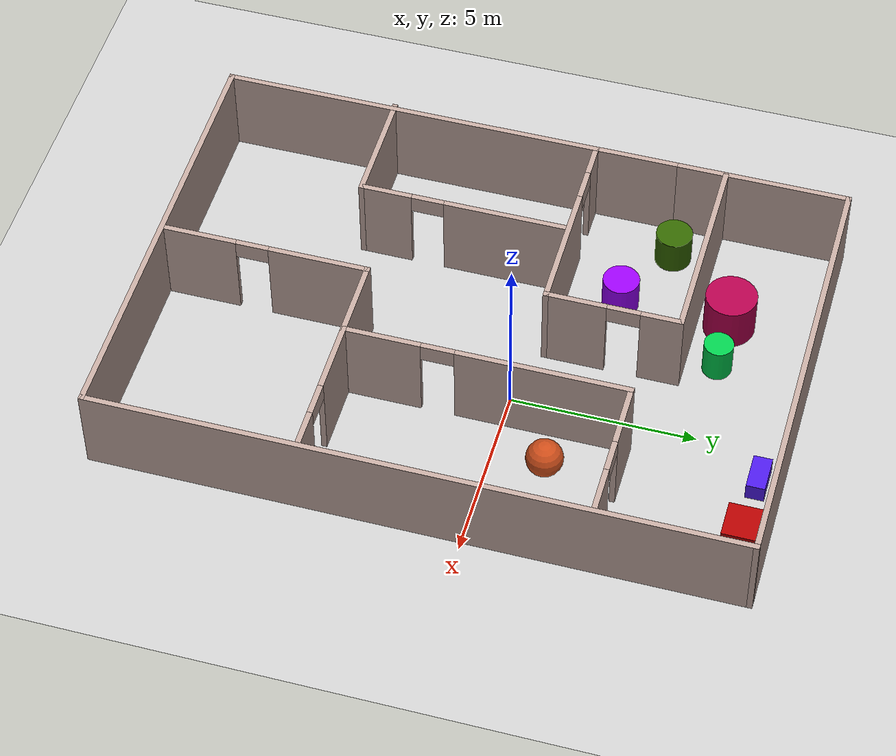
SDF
<sdf version="1.7">
 <world name="default">
  <model name="ground_plane">
   <static>1</static>
   <link name="link">
    <collision name="collision">
     <geometry><plane><normal>0 0 1</normal><size>100 100</size></plane></geometry>
     <surface><friction><ode><mu>100</mu><mu2>50</mu2></ode></friction></surface>
    </collision>
    <visual name="visual">
     <cast_shadows>0</cast_shadows>
     <geometry><plane><normal>0 0 1</normal><size>100 100</size></plane></geometry>
     <material>
      <script><uri>file://media/materials/scripts/gazebo.material</uri><name>Gazebo/Grey</name></script>
     </material>
    </visual>
   </link>
  </model>
  <model name="map3_level3">
   <pose>-1.22338 -1.24775 0 0 -0 0</pose>
   <link name="Wall_11">
    <collision name="Wall_11_Collision">
     <geometry><box><size>5.5 0.15 2.5</size></box></geometry>
     <pose>0 0 1.25 0 -0 0</pose>
    </collision>
    <visual name="Wall_11_Visual">
     <pose>0 0 1.25 0 -0 0</pose>
     <geometry><box><size>5.5 0.15 2.5</size></box></geometry>
     <material>
      <script><uri>file://media/materials/scripts/gazebo.material</uri><name>Gazebo/Grey</name></script>
      <ambient>0.760784 0.662745 0.627451 1</ambient>
     </material>
     <meta><layer>0</layer></meta>
    </visual>
    <pose>-3.16034 5.33374 0 0 -0 0</pose>
   </link>
   <link name="Wall_12">
    <pose>-0.485339 3.53374 0 0 -0 -1.5708</pose>
    <visual name="Wall_12_Visual_0">
     <pose>-1.30105 0 1.25 0 -0 0</pose>
     <geometry><box><size>1.14789 0.15 2.5</size></box></geometry>
     <material>
      <script><uri>file://media/materials/scripts/gazebo.material</uri><name>Gazebo/Grey</name></script>
      <ambient>0.760784 0.662745 0.627451 1</ambient>
     </material>
     <meta><layer>0</layer></meta>
    </visual>
    <collision name="Wall_12_Collision_0">
     <geometry><box><size>1.14789 0.15 2.5</size></box></geometry>
     <pose>-1.30105 0 1.25 0 -0 0</pose>
    </collision>
    <visual name="Wall_12_Visual_1">
     <pose>1.02395 0 1.25 0 -0 0</pose>
     <geometry><box><size>1.70211 0.15 2.5</size></box></geometry>
     <material>
      <script><uri>file://media/materials/scripts/gazebo.material</uri><name>Gazebo/Grey</name></script>
      <ambient>0.760784 0.662745 0.627451 1</ambient>
     </material>
     <meta><layer>0</layer></meta>
    </visual>
    <collision name="Wall_12_Collision_1">
     <geometry><box><size>1.70211 0.15 2.5</size></box></geometry>
     <pose>1.02395 0 1.25 0 -0 0</pose>
    </collision>
    <visual name="Wall_12_Visual_2">
     <pose>-0.277106 0 2.25 0 -0 0</pose>
     <geometry><box><size>0.9 0.15 0.5</size></box></geometry>
     <material>
      <script><uri>file://media/materials/scripts/gazebo.material</uri><name>Gazebo/Grey</name></script>
      <ambient>0.760784 0.662745 0.627451 1</ambient>
     </material>
     <meta><layer>0</layer></meta>
    </visual>
    <collision name="Wall_12_Collision_2">
     <geometry><box><size>0.9 0.15 0.5</size></box></geometry>
     <pose>-0.277106 0 2.25 0 -0 0</pose>
    </collision>
   </link>
   <link name="Wall_13">
    <pose>-3.16034 1.73374 0 0 -0 3.14159</pose>
    <visual name="Wall_13_Visual_0">
     <pose>-0.926346 0 1.25 0 -0 0</pose>
     <geometry><box><size>3.64731 0.15 2.5</size></box></geometry>
     <material>
      <script><uri>file://media/materials/scripts/gazebo.material</uri><name>Gazebo/Grey</name></script>
      <ambient>0.760784 0.662745 0.627451 1</ambient>
     </material>
     <meta><layer>0</layer></meta>
    </visual>
    <collision name="Wall_13_Collision_0">
     <geometry><box><size>3.64731 0.15 2.5</size></box></geometry>
     <pose>-0.926346 0 1.25 0 -0 0</pose>
    </collision>
    <visual name="Wall_13_Visual_1">
     <pose>2.27365 0 1.25 0 -0 0</pose>
     <geometry><box><size>0.952692 0.15 2.5</size></box></geometry>
     <material>
      <script><uri>file://media/materials/scripts/gazebo.material</uri><name>Gazebo/Grey</name></script>
      <ambient>0.760784 0.662745 0.627451 1</ambient>
     </material>
     <meta><layer>0</layer></meta>
    </visual>
    <collision name="Wall_13_Collision_1">
     <geometry><box><size>0.952692 0.15 2.5</size></box></geometry>
     <pose>2.27365 0 1.25 0 -0 0</pose>
    </collision>
    <visual name="Wall_13_Visual_2">
     <pose>1.34731 0 2.25 0 -0 0</pose>
     <geometry><box><size>0.9 0.15 0.5</size></box></geometry>
     <material>
      <script><uri>file://media/materials/scripts/gazebo.material</uri><name>Gazebo/Grey</name></script>
      <ambient>0.760784 0.662745 0.627451 1</ambient>
     </material>
     <meta><layer>0</layer></meta>
    </visual>
    <collision name="Wall_13_Collision_2">
     <geometry><box><size>0.9 0.15 0.5</size></box></geometry>
     <pose>1.34731 0 2.25 0 -0 0</pose>
    </collision>
   </link>
   <link name="Wall_15">
    <pose>3.96735 4.61084 0 0 -0 3.14159</pose>
    <visual name="Wall_15_Visual_0">
     <pose>-1.3475 0 1.25 0 -0 0</pose>
     <geometry><box><size>1.305 0.15 2.5</size></box></geometry>
     <material>
      <script><uri>file://media/materials/scripts/gazebo.material</uri><name>Gazebo/Grey</name></script>
      <ambient>0.760784 0.662745 0.627451 1</ambient>
     </material>
     <meta><layer>0</layer></meta>
    </visual>
    <collision name="Wall_15_Collision_0">
     <geometry><box><size>1.305 0.15 2.5</size></box></geometry>
     <pose>-1.3475 0 1.25 0 -0 0</pose>
    </collision>
    <visual name="Wall_15_Visual_1">
     <pose>1.1025 0 1.25 0 -0 0</pose>
     <geometry><box><size>1.795 0.15 2.5</size></box></geometry>
     <material>
      <script><uri>file://media/materials/scripts/gazebo.material</uri><name>Gazebo/Grey</name></script>
      <ambient>0.760784 0.662745 0.627451 1</ambient>
     </material>
     <meta><layer>0</layer></meta>
    </visual>
    <collision name="Wall_15_Collision_1">
     <geometry><box><size>1.795 0.15 2.5</size></box></geometry>
     <pose>1.1025 0 1.25 0 -0 0</pose>
    </collision>
    <visual name="Wall_15_Visual_2">
     <pose>-0.245 0 2.25 0 -0 0</pose>
     <geometry><box><size>0.9 0.15 0.5</size></box></geometry>
     <material>
      <script><uri>file://media/materials/scripts/gazebo.material</uri><name>Gazebo/Grey</name></script>
      <ambient>0.760784 0.662745 0.627451 1</ambient>
     </material>
     <meta><layer>0</layer></meta>
    </visual>
    <collision name="Wall_15_Collision_2">
     <geometry><box><size>0.9 0.15 0.5</size></box></geometry>
     <pose>-0.245 0 2.25 0 -0 0</pose>
    </collision>
   </link>
   <link name="Wall_16">
    <pose>2.04235 0.810843 0 0 -0 -1.5708</pose>
    <visual name="Wall_16_Visual_0">
     <pose>-1.5225 0 1.25 0 -0 0</pose>
     <geometry><box><size>4.705 0.15 2.5</size></box></geometry>
     <material>
      <script><uri>file://media/materials/scripts/gazebo.material</uri><name>Gazebo/Grey</name></script>
      <ambient>0.760784 0.662745 0.627451 1</ambient>
     </material>
     <meta><layer>0</layer></meta>
    </visual>
    <collision name="Wall_16_Collision_0">
     <geometry><box><size>4.705 0.15 2.5</size></box></geometry>
     <pose>-1.5225 0 1.25 0 -0 0</pose>
    </collision>
    <visual name="Wall_16_Visual_1">
     <pose>2.8025 0 1.25 0 -0 0</pose>
     <geometry><box><size>2.145 0.15 2.5</size></box></geometry>
     <material>
      <script><uri>file://media/materials/scripts/gazebo.material</uri><name>Gazebo/Grey</name></script>
      <ambient>0.760784 0.662745 0.627451 1</ambient>
     </material>
     <meta><layer>0</layer></meta>
    </visual>
    <collision name="Wall_16_Collision_1">
     <geometry><box><size>2.145 0.15 2.5</size></box></geometry>
     <pose>2.8025 0 1.25 0 -0 0</pose>
    </collision>
    <visual name="Wall_16_Visual_2">
     <pose>1.28 0 2.25 0 -0 0</pose>
     <geometry><box><size>0.9 0.15 0.5</size></box></geometry>
     <material>
      <script><uri>file://media/materials/scripts/gazebo.material</uri><name>Gazebo/Grey</name></script>
      <ambient>0.760784 0.662745 0.627451 1</ambient>
     </material>
     <meta><layer>0</layer></meta>
    </visual>
    <collision name="Wall_16_Collision_2">
     <geometry><box><size>0.9 0.15 0.5</size></box></geometry>
     <pose>1.28 0 2.25 0 -0 0</pose>
    </collision>
   </link>
   <link name="Wall_17">
    <pose>3.96735 -2.98916 0 0 -0 0</pose>
    <visual name="Wall_17_Visual_0">
     <pose>-0.9825 0 1.25 0 -0 0</pose>
     <geometry><box><size>2.035 0.15 2.5</size></box></geometry>
     <material>
      <script><uri>file://media/materials/scripts/gazebo.material</uri><name>Gazebo/Grey</name></script>
      <ambient>0.760784 0.662745 0.627451 1</ambient>
     </material>
     <meta><layer>0</layer></meta>
    </visual>
    <collision name="Wall_17_Collision_0">
     <geometry><box><size>2.035 0.15 2.5</size></box></geometry>
     <pose>-0.9825 0 1.25 0 -0 0</pose>
    </collision>
    <visual name="Wall_17_Visual_1">
     <pose>1.4675 0 1.25 0 -0 0</pose>
     <geometry><box><size>1.065 0.15 2.5</size></box></geometry>
     <material>
      <script><uri>file://media/materials/scripts/gazebo.material</uri><name>Gazebo/Grey</name></script>
      <ambient>0.760784 0.662745 0.627451 1</ambient>
     </material>
     <meta><layer>0</layer></meta>
    </visual>
    <collision name="Wall_17_Collision_1">
     <geometry><box><size>1.065 0.15 2.5</size></box></geometry>
     <pose>1.4675 0 1.25 0 -0 0</pose>
    </collision>
    <visual name="Wall_17_Visual_2">
     <pose>0.485 0 2.25 0 -0 0</pose>
     <geometry><box><size>0.9 0.15 0.5</size></box></geometry>
     <material>
      <script><uri>file://media/materials/scripts/gazebo.material</uri><name>Gazebo/Grey</name></script>
      <ambient>0.760784 0.662745 0.627451 1</ambient>
     </material>
     <meta><layer>0</layer></meta>
    </visual>
    <collision name="Wall_17_Collision_2">
     <geometry><box><size>0.9 0.15 0.5</size></box></geometry>
     <pose>0.485 0 2.25 0 -0 0</pose>
    </collision>
   </link>
   <link name="Wall_19">
    <pose>-2.86765 -1.18916 0 0 -0 -1.5708</pose>
    <visual name="Wall_19_Visual_0">
     <pose>-1.1825 0 1.25 0 -0 0</pose>
     <geometry><box><size>3.385 0.15 2.5</size></box></geometry>
     <material>
      <script><uri>file://media/materials/scripts/gazebo.material</uri><name>Gazebo/Grey</name></script>
      <ambient>0.760784 0.662745 0.627451 1</ambient>
     </material>
     <meta><layer>0</layer></meta>
    </visual>
    <collision name="Wall_19_Collision_0">
     <geometry><box><size>3.385 0.15 2.5</size></box></geometry>
     <pose>-1.1825 0 1.25 0 -0 0</pose>
    </collision>
    <visual name="Wall_19_Visual_1">
     <pose>2.1425 0 1.25 0 -0 0</pose>
     <geometry><box><size>1.465 0.15 2.5</size></box></geometry>
     <material>
      <script><uri>file://media/materials/scripts/gazebo.material</uri><name>Gazebo/Grey</name></script>
      <ambient>0.760784 0.662745 0.627451 1</ambient>
     </material>
     <meta><layer>0</layer></meta>
    </visual>
    <collision name="Wall_19_Collision_1">
     <geometry><box><size>1.465 0.15 2.5</size></box></geometry>
     <pose>2.1425 0 1.25 0 -0 0</pose>
    </collision>
    <visual name="Wall_19_Visual_2">
     <pose>0.96 0 2.25 0 -0 0</pose>
     <geometry><box><size>0.9 0.15 0.5</size></box></geometry>
     <material>
      <script><uri>file://media/materials/scripts/gazebo.material</uri><name>Gazebo/Grey</name></script>
      <ambient>0.760784 0.662745 0.627451 1</ambient>
     </material>
     <meta><layer>0</layer></meta>
    </visual>
    <collision name="Wall_19_Collision_2">
     <geometry><box><size>0.9 0.15 0.5</size></box></geometry>
     <pose>0.96 0 2.25 0 -0 0</pose>
    </collision>
   </link>
   <link name="Wall_2">
    <collision name="Wall_2_Collision">
     <geometry><box><size>12.75 0.15 2.5</size></box></geometry>
     <pose>0 0 1.25 0 -0 0</pose>
    </collision>
    <visual name="Wall_2_Visual">
     <pose>0 0 1.25 0 -0 0</pose>
     <geometry><box><size>12.75 0.15 2.5</size></box></geometry>
     <material>
      <script><uri>file://media/materials/scripts/gazebo.material</uri><name>Gazebo/Grey</name></script>
      <ambient>0.760784 0.662745 0.627451 1</ambient>
     </material>
     <meta><layer>0</layer></meta>
    </visual>
    <pose>-5.88235 -2.375 0 0 -0 -1.5708</pose>
   </link>
   <link name="Wall_20">
    <collision name="Wall_20_Collision">
     <geometry><box><size>3.25 0.15 2.5</size></box></geometry>
     <pose>0 0 1.25 0 -0 0</pose>
    </collision>
    <visual name="Wall_20_Visual">
     <pose>0 0 1.25 0 -0 0</pose>
     <geometry><box><size>3.25 0.15 2.5</size></box></geometry>
     <material>
      <script><uri>file://media/materials/scripts/gazebo.material</uri><name>Gazebo/Grey</name></script>
      <ambient>0.760784 0.662745 0.627451 1</ambient>
     </material>
     <meta><layer>0</layer></meta>
    </visual>
    <pose>-4.41765 -3.98916 0 0 -0 3.14159</pose>
   </link>
   <link name="Wall_22">
    <collision name="Wall_22_Collision">
     <geometry><box><size>2.25 0.15 2.5</size></box></geometry>
     <pose>0 0 1.25 0 -0 0</pose>
    </collision>
    <visual name="Wall_22_Visual">
     <pose>0 0 1.25 0 -0 0</pose>
     <geometry><box><size>2.25 0.15 2.5</size></box></geometry>
     <material>
      <script><uri>file://media/materials/scripts/gazebo.material</uri><name>Gazebo/Grey</name></script>
      <ambient>0.760784 0.662745 0.627451 1</ambient>
     </material>
     <meta><layer>0</layer></meta>
    </visual>
    <pose>0.992353 -2.98916 0 0 -0 3.14159</pose>
   </link>
   <link name="Wall_23">
    <pose>-0.057647 -5.78916 0 0 -0 -1.5708</pose>
    <visual name="Wall_23_Visual_0">
     <pose>-1.4825 0 1.25 0 -0 0</pose>
     <geometry><box><size>2.785 0.15 2.5</size></box></geometry>
     <material>
      <script><uri>file://media/materials/scripts/gazebo.material</uri><name>Gazebo/Grey</name></script>
      <ambient>0.760784 0.662745 0.627451 1</ambient>
     </material>
     <meta><layer>0</layer></meta>
    </visual>
    <collision name="Wall_23_Collision_0">
     <geometry><box><size>2.785 0.15 2.5</size></box></geometry>
     <pose>-1.4825 0 1.25 0 -0 0</pose>
    </collision>
    <visual name="Wall_23_Visual_1">
     <pose>1.8425 0 1.25 0 -0 0</pose>
     <geometry><box><size>2.065 0.15 2.5</size></box></geometry>
     <material>
      <script><uri>file://media/materials/scripts/gazebo.material</uri><name>Gazebo/Grey</name></script>
      <ambient>0.760784 0.662745 0.627451 1</ambient>
     </material>
     <meta><layer>0</layer></meta>
    </visual>
    <collision name="Wall_23_Collision_1">
     <geometry><box><size>2.065 0.15 2.5</size></box></geometry>
     <pose>1.8425 0 1.25 0 -0 0</pose>
    </collision>
    <visual name="Wall_23_Visual_2">
     <pose>0.36 0 2.25 0 -0 0</pose>
     <geometry><box><size>0.9 0.15 0.5</size></box></geometry>
     <material>
      <script><uri>file://media/materials/scripts/gazebo.material</uri><name>Gazebo/Grey</name></script>
      <ambient>0.760784 0.662745 0.627451 1</ambient>
     </material>
     <meta><layer>0</layer></meta>
    </visual>
    <collision name="Wall_23_Collision_2">
     <geometry><box><size>0.9 0.15 0.5</size></box></geometry>
     <pose>0.36 0 2.25 0 -0 0</pose>
    </collision>
   </link>
   <link name="Wall_3">
    <collision name="Wall_3_Collision">
     <geometry><box><size>12 0.15 2.5</size></box></geometry>
     <pose>0 0 1.25 0 -0 0</pose>
    </collision>
    <visual name="Wall_3_Visual">
     <pose>0 0 1.25 0 -0 0</pose>
     <geometry><box><size>12 0.15 2.5</size></box></geometry>
     <material>
      <script><uri>file://media/materials/scripts/gazebo.material</uri><name>Gazebo/Grey</name></script>
      <ambient>0.760784 0.662745 0.627451 1</ambient>
     </material>
     <meta><layer>0</layer></meta>
    </visual>
    <pose>0.042645 -8.675 0 0 -0 0</pose>
   </link>
   <link name="Wall_4">
    <collision name="Wall_4_Collision">
     <geometry><box><size>17.5 0.15 2.5</size></box></geometry>
     <pose>0 0 1.25 0 -0 0</pose>
    </collision>
    <visual name="Wall_4_Visual">
     <pose>0 0 1.25 0 -0 0</pose>
     <geometry><box><size>17.5 0.15 2.5</size></box></geometry>
     <material>
      <script><uri>file://media/materials/scripts/gazebo.material</uri><name>Gazebo/Grey</name></script>
      <ambient>0.760784 0.662745 0.627451 1</ambient>
     </material>
     <meta><layer>0</layer></meta>
    </visual>
    <pose>5.96765 0 0 0 -0 1.5708</pose>
   </link>
   <link name="Wall_5">
    <collision name="Wall_5_Collision">
     <geometry><box><size>12 0.15 2.5</size></box></geometry>
     <pose>0 0 1.25 0 -0 0</pose>
    </collision>
    <visual name="Wall_5_Visual">
     <pose>0 0 1.25 0 -0 0</pose>
     <geometry><box><size>12 0.15 2.5</size></box></geometry>
     <material>
      <script><uri>file://media/materials/scripts/gazebo.material</uri><name>Gazebo/Grey</name></script>
      <ambient>0.760784 0.662745 0.627451 1</ambient>
     </material>
     <meta><layer>0</layer></meta>
    </visual>
    <pose>0.042645 8.675 0 0 -0 3.14159</pose>
   </link>
   <link name="Wall_6">
    <collision name="Wall_6_Collision">
     <geometry><box><size>4.75 0.15 2.5</size></box></geometry>
     <pose>0 0 1.25 0 -0 0</pose>
    </collision>
    <visual name="Wall_6_Visual">
     <pose>0 0 1.25 0 -0 0</pose>
     <geometry><box><size>4.75 0.15 2.5</size></box></geometry>
     <material>
      <script><uri>file://media/materials/scripts/gazebo.material</uri><name>Gazebo/Grey</name></script>
      <ambient>0.760784 0.662745 0.627451 1</ambient>
     </material>
     <meta><layer>0</layer></meta>
    </visual>
    <pose>-5.88235 6.375 0 0 -0 -1.5708</pose>
   </link>
   <static>1</static>
  </model>
  <model name="pink_prismatic4">
   <link name="link">
    <inertial>
     <mass>1</mass>
     <inertia><ixx>0.145833</ixx><ixy>0</ixy><ixz>0</ixz><iyy>0.145833</iyy><iyz>0</iyz><izz>0.125</izz></inertia>
    </inertial>
    <visual name="visual">
     <geometry><cylinder><radius>0.7</radius><length>1.5</length></cylinder></geometry>
     <material>
      <script><name>Gazebo/Grey</name><uri>file://media/materials/scripts/gazebo.material</uri></script>
      <shader type="pixel"><normal_map>__default__</normal_map></shader>
      <ambient>0.7 0 0.3 1</ambient>
      <diffuse>0.7 0.7 0.7 1</diffuse>
      <specular>0.01 0.01 0.01 1</specular>
      <emissive>0 0 0 1</emissive>
     </material>
    </visual>
    <collision name="collision">
     <geometry><cylinder><radius>0.7</radius><length>1.5</length></cylinder></geometry>
     <surface>
      <friction>
       <ode><mu>1</mu><mu2>1</mu2><fdir1>0 0 0</fdir1><slip1>0</slip1><slip2>0</slip2></ode>
       <torsional>
        <coefficient>1</coefficient>
        <patch_radius>0</patch_radius>
        <surface_radius>0</surface_radius>
        <use_patch_radius>1</use_patch_radius>
        <ode><slip>0</slip></ode>
       </torsional>
      </friction>
      <bounce><restitution_coefficient>0</restitution_coefficient><threshold>1e+06</threshold></bounce>
      <contact>
       <collide_without_contact>0</collide_without_contact>
       <collide_without_contact_bitmask>1</collide_without_contact_bitmask>
       <collide_bitmask>1</collide_bitmask>
       <ode>
        <soft_cfm>0</soft_cfm>
        <soft_erp>0.2</soft_erp>
        <kp>1e+13</kp>
        <kd>1</kd>
        <max_vel>0.01</max_vel>
        <min_depth>0</min_depth>
       </ode>
       <bullet>
        <split_impulse>1</split_impulse>
        <split_impulse_penetration_threshold>-0.01</split_impulse_penetration_threshold>
        <soft_cfm>0</soft_cfm>
        <soft_erp>0.2</soft_erp>
        <kp>1e+13</kp>
        <kd>1</kd>
       </bullet>
      </contact>
     </surface>
    </collision>
   </link>
   <static>0</static>
   <pose>-4 5 0.499992 -3e-06 3e-06 0</pose>
  </model>
  <model name="green_primastic">
   <link name="link">
    <inertial>
     <mass>1</mass>
     <inertia><ixx>0.145833</ixx><ixy>0</ixy><ixz>0</ixz><iyy>0.145833</iyy><iyz>0</iyz><izz>0.125</izz></inertia>
    </inertial>
    <visual name="visual">
     <geometry><cylinder><radius>0.4</radius><length>1</length></cylinder></geometry>
     <material>
      <script><name>Gazebo/Grey</name><uri>file://media/materials/scripts/gazebo.material</uri></script>
      <shader type="pixel"><normal_map>__default__</normal_map></shader>
      <ambient>0 0.8 0.3 1</ambient>
      <diffuse>0.7 0.7 0.7 1</diffuse>
      <specular>0.01 0.01 0.01 1</specular>
      <emissive>0 0 0 1</emissive>
     </material>
    </visual>
    <collision name="collision">
     <geometry><cylinder><radius>0.4</radius><length>1</length></cylinder></geometry>
     <surface>
      <friction>
       <ode><mu>1</mu><mu2>1</mu2><fdir1>0 0 0</fdir1><slip1>0</slip1><slip2>0</slip2></ode>
       <torsional>
        <coefficient>1</coefficient>
        <patch_radius>0</patch_radius>
        <surface_radius>0</surface_radius>
        <use_patch_radius>1</use_patch_radius>
        <ode><slip>0</slip></ode>
       </torsional>
      </friction>
      <bounce><restitution_coefficient>0</restitution_coefficient><threshold>1e+06</threshold></bounce>
      <contact>
       <collide_without_contact>0</collide_without_contact>
       <collide_without_contact_bitmask>1</collide_without_contact_bitmask>
       <collide_bitmask>1</collide_bitmask>
       <ode>
        <soft_cfm>0</soft_cfm>
        <soft_erp>0.2</soft_erp>
        <kp>1e+13</kp>
        <kd>1</kd>
        <max_vel>0.01</max_vel>
        <min_depth>0</min_depth>
       </ode>
       <bullet>
        <split_impulse>1</split_impulse>
        <split_impulse_penetration_threshold>-0.01</split_impulse_penetration_threshold>
        <soft_cfm>0</soft_cfm>
        <soft_erp>0.2</soft_erp>
        <kp>1e+13</kp>
        <kd>1</kd>
       </bullet>
      </contact>
     </surface>
    </collision>
   </link>
   <static>0</static>
   <pose>-2.49627 5 0.499998 3e-06 -3e-06 0</pose>
  </model>
  <model name="purple_box2">
   <link name="link">
    <inertial>
     <mass>1</mass>
     <inertia>
      <ixx>0.166667</ixx>
      <ixy>0</ixy>
      <ixz>0</ixz>
      <iyy>0.166667</iyy>
      <iyz>0</iyz>
      <izz>0.166667</izz>
     </inertia>
    </inertial>
    <visual name="visual">
     <geometry><box><size>1 0.5 0.5</size></box></geometry>
     <material>
      <script><name>Gazebo/Grey</name><uri>file://media/materials/scripts/gazebo.material</uri></script>
      <shader type="pixel"><normal_map>__default__</normal_map></shader>
      <ambient>0.3 0.1 0.9 1</ambient>
      <diffuse>0.7 0.7 0.7 1</diffuse>
      <specular>0.01 0.01 0.01 1</specular>
      <emissive>0 0 0 1</emissive>
     </material>
    </visual>
    <collision name="collision">
     <geometry><box><size>1 0.5 0.5</size></box></geometry>
     <surface>
      <friction>
       <ode><mu>1</mu><mu2>1</mu2><fdir1>0 0 0</fdir1><slip1>0</slip1><slip2>0</slip2></ode>
       <torsional>
        <coefficient>1</coefficient>
        <patch_radius>0</patch_radius>
        <surface_radius>0</surface_radius>
        <use_patch_radius>1</use_patch_radius>
        <ode><slip>0</slip></ode>
       </torsional>
      </friction>
      <bounce><restitution_coefficient>0</restitution_coefficient><threshold>1e+06</threshold></bounce>
      <contact>
       <collide_without_contact>0</collide_without_contact>
       <collide_without_contact_bitmask>1</collide_without_contact_bitmask>
       <collide_bitmask>1</collide_bitmask>
       <ode>
        <soft_cfm>0</soft_cfm>
        <soft_erp>0.2</soft_erp>
        <kp>1e+13</kp>
        <kd>1</kd>
        <max_vel>0.01</max_vel>
        <min_depth>0</min_depth>
       </ode>
       <bullet>
        <split_impulse>1</split_impulse>
        <split_impulse_penetration_threshold>-0.01</split_impulse_penetration_threshold>
        <soft_cfm>0</soft_cfm>
        <soft_erp>0.2</soft_erp>
        <kp>1e+13</kp>
        <kd>1</kd>
       </bullet>
      </contact>
     </surface>
    </collision>
   </link>
   <static>0</static>
   <pose>0.999998 6.85224 0.259937 0 -0 1e-06</pose>
  </model>
  <model name="unit_box_1_ed">
   <link name="link">
    <inertial>
     <mass>1</mass>
     <inertia>
      <ixx>0.166667</ixx>
      <ixy>0</ixy>
      <ixz>0</ixz>
      <iyy>0.166667</iyy>
      <iyz>0</iyz>
      <izz>0.166667</izz>
     </inertia>
    </inertial>
    <visual name="visual">
     <geometry><box><size>1 1 1</size></box></geometry>
     <material>
      <script><name>Gazebo/Grey</name><uri>file://media/materials/scripts/gazebo.material</uri></script>
      <shader type="pixel"><normal_map>__default__</normal_map></shader>
      <ambient>0.7 0 0 0</ambient>
      <diffuse>0.7 0.7 0.7 1</diffuse>
      <specular>0.01 0.01 0.01 1</specular>
      <emissive>0 0 0 1</emissive>
     </material>
    </visual>
    <collision name="collision">
     <geometry><box><size>1 1 1</size></box></geometry>
     <surface>
      <friction>
       <ode><mu>1</mu><mu2>1</mu2><fdir1>0 0 0</fdir1><slip1>0</slip1><slip2>0</slip2></ode>
       <torsional>
        <coefficient>1</coefficient>
        <patch_radius>0</patch_radius>
        <surface_radius>0</surface_radius>
        <use_patch_radius>1</use_patch_radius>
        <ode><slip>0</slip></ode>
       </torsional>
      </friction>
      <bounce><restitution_coefficient>0</restitution_coefficient><threshold>1e+06</threshold></bounce>
      <contact>
       <collide_without_contact>0</collide_without_contact>
       <collide_without_contact_bitmask>1</collide_without_contact_bitmask>
       <collide_bitmask>1</collide_bitmask>
       <ode>
        <soft_cfm>0</soft_cfm>
        <soft_erp>0.2</soft_erp>
        <kp>1e+13</kp>
        <kd>1</kd>
        <max_vel>0.01</max_vel>
        <min_depth>0</min_depth>
       </ode>
       <bullet>
        <split_impulse>1</split_impulse>
        <split_impulse_penetration_threshold>-0.01</split_impulse_penetration_threshold>
        <soft_cfm>0</soft_cfm>
        <soft_erp>0.2</soft_erp>
        <kp>1e+13</kp>
        <kd>1</kd>
       </bullet>
      </contact>
     </surface>
    </collision>
   </link>
   <static>0</static>
   <pose>3 6.85224 0.5 0 -0 1e-06</pose>
  </model>
  <model name="unit_cylinder_5">
   <link name="link">
    <inertial>
     <mass>1</mass>
     <inertia><ixx>0.145833</ixx><ixy>0</ixy><ixz>0</ixz><iyy>0.145833</iyy><iyz>0</iyz><izz>0.125</izz></inertia>
    </inertial>
    <visual name="visual">
     <geometry><cylinder><radius>0.5</radius><length>1</length></cylinder></geometry>
     <material>
      <script><name>Gazebo/Grey</name><uri>file://media/materials/scripts/gazebo.material</uri></script>
      <shader type="pixel"><normal_map>__default__</normal_map></shader>
      <ambient>0.2 0.4 0 0</ambient>
      <diffuse>0.7 0.7 0.7 1</diffuse>
      <specular>0.01 0.01 0.01 1</specular>
      <emissive>0 0 0 1</emissive>
     </material>
    </visual>
    <collision name="collision">
     <geometry><cylinder><radius>0.5</radius><length>1</length></cylinder></geometry>
     <surface>
      <friction>
       <ode><mu>1</mu><mu2>1</mu2><fdir1>0 0 0</fdir1><slip1>0</slip1><slip2>0</slip2></ode>
       <torsional>
        <coefficient>1</coefficient>
        <patch_radius>0</patch_radius>
        <surface_radius>0</surface_radius>
        <use_patch_radius>1</use_patch_radius>
        <ode><slip>0</slip></ode>
       </torsional>
      </friction>
      <bounce><restitution_coefficient>0</restitution_coefficient><threshold>1e+06</threshold></bounce>
      <contact>
       <collide_without_contact>0</collide_without_contact>
       <collide_without_contact_bitmask>1</collide_without_contact_bitmask>
       <collide_bitmask>1</collide_bitmask>
       <ode>
        <soft_cfm>0</soft_cfm>
        <soft_erp>0.2</soft_erp>
        <kp>1e+13</kp>
        <kd>1</kd>
        <max_vel>0.01</max_vel>
        <min_depth>0</min_depth>
       </ode>
       <bullet>
        <split_impulse>1</split_impulse>
        <split_impulse_penetration_threshold>-0.01</split_impulse_penetration_threshold>
        <soft_cfm>0</soft_cfm>
        <soft_erp>0.2</soft_erp>
        <kp>1e+13</kp>
        <kd>1</kd>
       </bullet>
      </contact>
     </surface>
    </collision>
   </link>
   <static>0</static>
   <pose>-6 3 0.499992 -3e-06 4e-06 0</pose>
  </model>
  <model name="unit_cylinder_6">
   <link name="link">
    <inertial>
     <mass>1</mass>
     <inertia><ixx>0.145833</ixx><ixy>0</ixy><ixz>0</ixz><iyy>0.145833</iyy><iyz>0</iyz><izz>0.125</izz></inertia>
    </inertial>
    <visual name="visual">
     <geometry><cylinder><radius>0.5</radius><length>1</length></cylinder></geometry>
     <material>
      <script><name>Gazebo/Grey</name><uri>file://media/materials/scripts/gazebo.material</uri></script>
      <shader type="pixel"><normal_map>__default__</normal_map></shader>
      <ambient>0.6 0 1 1</ambient>
      <diffuse>0.7 0.7 0.7 1</diffuse>
      <specular>0.01 0.01 0.01 1</specular>
      <emissive>0 0 0 1</emissive>
     </material>
    </visual>
    <collision name="collision">
     <geometry><cylinder><radius>0.5</radius><length>1</length></cylinder></geometry>
     <surface>
      <friction>
       <ode><mu>1</mu><mu2>1</mu2><fdir1>0 0 0</fdir1><slip1>0</slip1><slip2>0</slip2></ode>
       <torsional>
        <coefficient>1</coefficient>
        <patch_radius>0</patch_radius>
        <surface_radius>0</surface_radius>
        <use_patch_radius>1</use_patch_radius>
        <ode><slip>0</slip></ode>
       </torsional>
      </friction>
      <bounce><restitution_coefficient>0</restitution_coefficient><threshold>1e+06</threshold></bounce>
      <contact>
       <collide_without_contact>0</collide_without_contact>
       <collide_without_contact_bitmask>1</collide_without_contact_bitmask>
       <collide_bitmask>1</collide_bitmask>
       <ode>
        <soft_cfm>0</soft_cfm>
        <soft_erp>0.2</soft_erp>
        <kp>1e+13</kp>
        <kd>1</kd>
        <max_vel>0.01</max_vel>
        <min_depth>0</min_depth>
       </ode>
       <bullet>
        <split_impulse>1</split_impulse>
        <split_impulse_penetration_threshold>-0.01</split_impulse_penetration_threshold>
        <soft_cfm>0</soft_cfm>
        <soft_erp>0.2</soft_erp>
        <kp>1e+13</kp>
        <kd>1</kd>
       </bullet>
      </contact>
     </surface>
    </collision>
   </link>
   <static>0</static>
   <pose>-4 2 0.499998 3e-06 -4e-06 0</pose>
  </model>
  <model name="unit_sphere_0">
   <link name="link">
    <inertial>
     <mass>1</mass>
     <inertia><ixx>0.1</ixx><ixy>0</ixy><ixz>0</ixz><iyy>0.1</iyy><iyz>0</iyz><izz>0.1</izz></inertia>
    </inertial>
    <visual name="visual">
     <geometry><sphere><radius>0.3</radius></sphere></geometry>
     <material>
      <script><name>Gazebo/Grey</name><uri>file://media/materials/scripts/gazebo.material</uri></script>
      <shader type="pixel"><normal_map>__default__</normal_map></shader>
      <ambient>0.3 1 0.5 1</ambient>
      <diffuse>0.7 0.7 0.7 1</diffuse>
      <specular>0.01 0.01 0.01 1</specular>
      <emissive>0 0 0 1</emissive>
     </material>
    </visual>
    <collision name="collision">
     <geometry><sphere><radius>0.3</radius></sphere></geometry>
     <surface>
      <friction>
       <ode><mu>1</mu><mu2>1</mu2><fdir1>0 0 0</fdir1><slip1>0</slip1><slip2>0</slip2></ode>
       <torsional>
        <coefficient>1</coefficient>
        <patch_radius>0</patch_radius>
        <surface_radius>0</surface_radius>
        <use_patch_radius>1</use_patch_radius>
        <ode><slip>0</slip></ode>
       </torsional>
      </friction>
      <bounce><restitution_coefficient>0</restitution_coefficient><threshold>1e+06</threshold></bounce>
      <contact>
       <collide_without_contact>0</collide_without_contact>
       <collide_without_contact_bitmask>1</collide_without_contact_bitmask>
       <collide_bitmask>1</collide_bitmask>
       <ode>
        <soft_cfm>0</soft_cfm>
        <soft_erp>0.2</soft_erp>
        <kp>1e+13</kp>
        <kd>1</kd>
        <max_vel>0.01</max_vel>
        <min_depth>0</min_depth>
       </ode>
       <bullet>
        <split_impulse>1</split_impulse>
        <split_impulse_penetration_threshold>-0.01</split_impulse_penetration_threshold>
        <soft_cfm>0</soft_cfm>
        <soft_erp>0.2</soft_erp>
        <kp>1e+13</kp>
        <kd>1</kd>
       </bullet>
      </contact>
     </surface>
    </collision>
   </link>
   <static>0</static>
   <pose>3.58298 -1 0.298484 0 -0 0</pose>
  </model>
  <model name="unit_sphere000">
   <link name="link">
    <inertial>
     <mass>1</mass>
     <inertia><ixx>0.1</ixx><ixy>0</ixy><ixz>0</ixz><iyy>0.1</iyy><iyz>0</iyz><izz>0.1</izz></inertia>
    </inertial>
    <visual name="visual">
     <geometry><sphere><radius>0.5</radius></sphere></geometry>
     <material>
      <script><name>Gazebo/Grey</name><uri>file://media/materials/scripts/gazebo.material</uri></script>
      <shader type="pixel"><normal_map>__default__</normal_map></shader>
      <ambient>0.8 0.3 0.1 0</ambient>
      <diffuse>0.7 0.7 0.7 1</diffuse>
      <specular>0.01 0.01 0.01 1</specular>
      <emissive>0 0 0 1</emissive>
     </material>
    </visual>
    <collision name="collision">
     <geometry><sphere><radius>0.5</radius></sphere></geometry>
     <surface>
      <friction>
       <ode><mu>1</mu><mu2>1</mu2><fdir1>0 0 0</fdir1><slip1>0</slip1><slip2>0</slip2></ode>
       <torsional>
        <coefficient>1</coefficient>
        <patch_radius>0</patch_radius>
        <surface_radius>0</surface_radius>
        <use_patch_radius>1</use_patch_radius>
        <ode><slip>0</slip></ode>
       </torsional>
      </friction>
      <bounce><restitution_coefficient>0</restitution_coefficient><threshold>1e+06</threshold></bounce>
      <contact>
       <collide_without_contact>0</collide_without_contact>
       <collide_without_contact_bitmask>1</collide_without_contact_bitmask>
       <collide_bitmask>1</collide_bitmask>
       <ode>
        <soft_cfm>0</soft_cfm>
        <soft_erp>0.2</soft_erp>
        <kp>1e+13</kp>
        <kd>1</kd>
        <max_vel>0.01</max_vel>
        <min_depth>0</min_depth>
       </ode>
       <bullet>
        <split_impulse>1</split_impulse>
        <split_impulse_penetration_threshold>-0.01</split_impulse_penetration_threshold>
        <soft_cfm>0</soft_cfm>
        <soft_erp>0.2</soft_erp>
        <kp>1e+13</kp>
        <kd>1</kd>
       </bullet>
      </contact>
     </surface>
    </collision>
   </link>
   <static>0</static>
   <pose>2 1.44694 0.5 0 -0 0</pose>
  </model>
 </world>
</sdf>
